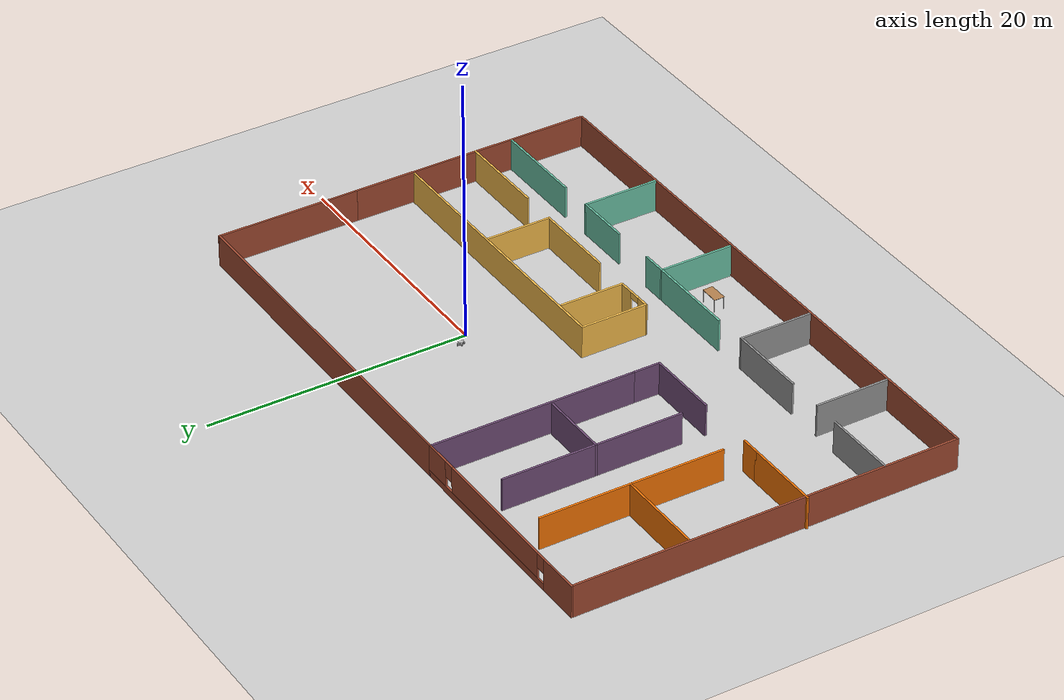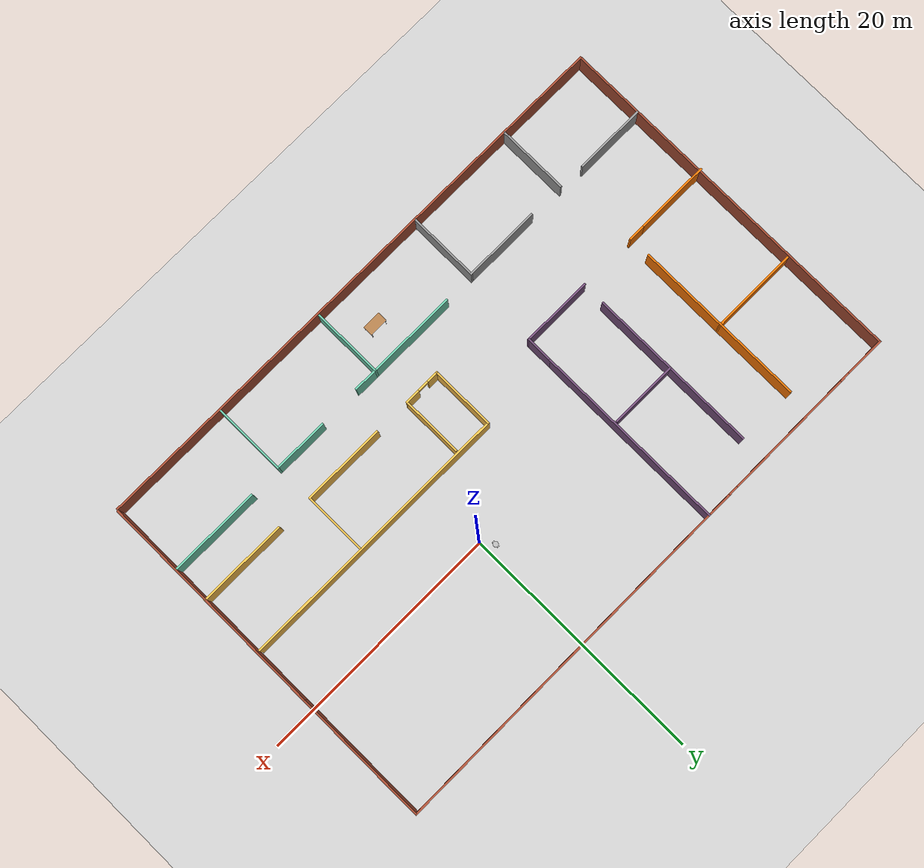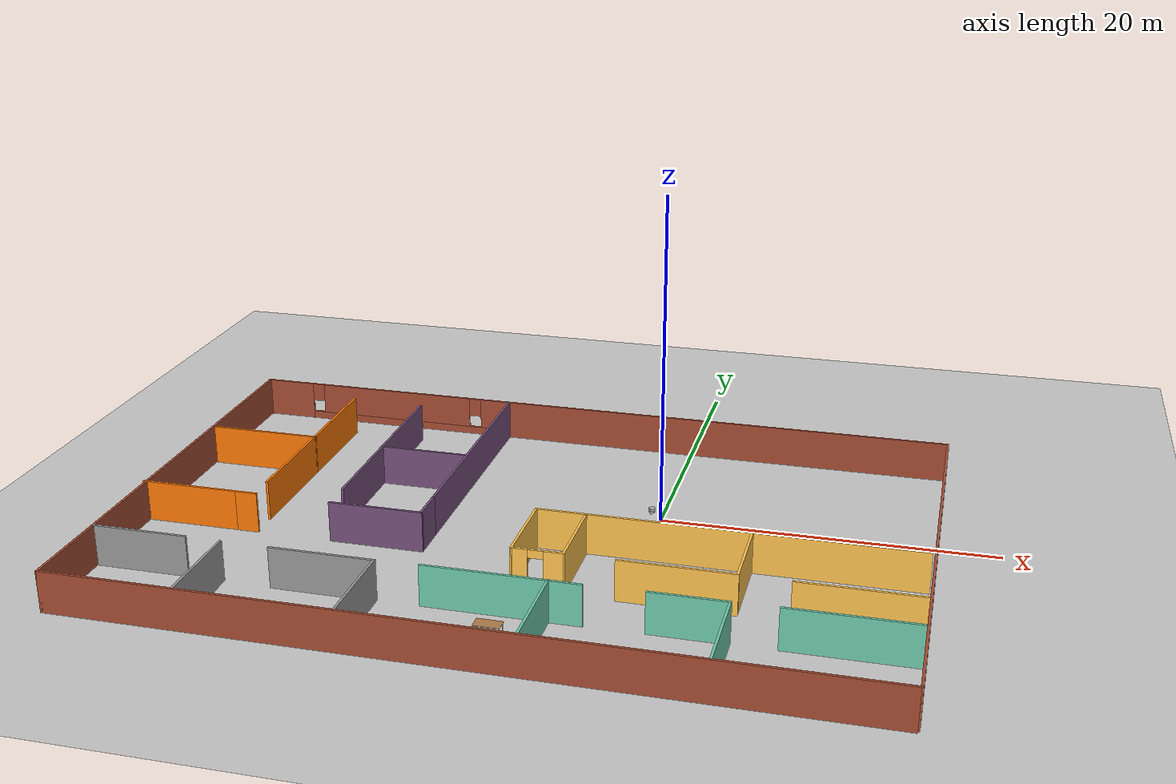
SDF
<sdf version="1.6">
 <world name="default">
  <model name="ground_plane">
   <static>1</static>
   <link name="link">
    <collision name="collision">
     <geometry><plane><normal>0 0 1</normal><size>100 100</size></plane></geometry>
     <surface><friction><ode><mu>100</mu><mu2>50</mu2></ode></friction></surface>
    </collision>
    <visual name="visual">
     <cast_shadows>0</cast_shadows>
     <geometry><plane><normal>0 0 1</normal><size>100 100</size></plane></geometry>
     <material>
      <script><uri>file://media/materials/scripts/gazebo.material</uri><name>Gazebo/Grey</name></script>
     </material>
    </visual>
   </link>
  </model>
  <model name="sinap_office">
   <pose>-6.8627 -4.6506 0 0 -0 0</pose>
   <link name="Wall_11">
    <pose>-14.3528 14.8 0 0 -0 0</pose>
    <visual name="Wall_11_Visual_0">
     <pose>-7.1066 0 1.25 0 -0 0</pose>
     <geometry><box><size>3.2868 0.15 2.5</size></box></geometry>
     <material>
      <script><uri>file://media/materials/scripts/gazebo.material</uri><name>Gazebo/Bricks</name></script>
      <ambient>1 1 1 1</ambient>
     </material>
     <meta><layer>0</layer></meta>
    </visual>
    <collision name="Wall_11_Collision_0">
     <geometry><box><size>3.2868 0.15 2.5</size></box></geometry>
     <pose>-7.1066 0 1.25 0 -0 0</pose>
    </collision>
    <visual name="Wall_11_Visual_1">
     <pose>1.6434 0 0.25 0 -0 0</pose>
     <geometry><box><size>14.2132 0.15 0.5</size></box></geometry>
     <material>
      <script><uri>file://media/materials/scripts/gazebo.material</uri><name>Gazebo/Bricks</name></script>
      <ambient>1 1 1 1</ambient>
     </material>
     <meta><layer>0</layer></meta>
    </visual>
    <collision name="Wall_11_Collision_1">
     <geometry><box><size>14.2132 0.15 0.5</size></box></geometry>
     <pose>1.6434 0 0.25 0 -0 0</pose>
    </collision>
    <visual name="Wall_11_Visual_2">
     <pose>0.608596 0 1.5 0 -0 0</pose>
     <geometry><box><size>10.5436 0.15 2</size></box></geometry>
     <material>
      <script><uri>file://media/materials/scripts/gazebo.material</uri><name>Gazebo/Bricks</name></script>
      <ambient>1 1 1 1</ambient>
     </material>
     <meta><layer>0</layer></meta>
    </visual>
    <collision name="Wall_11_Collision_2">
     <geometry><box><size>10.5436 0.15 2</size></box></geometry>
     <pose>0.608596 0 1.5 0 -0 0</pose>
    </collision>
    <visual name="Wall_11_Visual_3">
     <pose>7.71519 0 1.5 0 -0 0</pose>
     <geometry><box><size>2.06961 0.15 2</size></box></geometry>
     <material>
      <script><uri>file://media/materials/scripts/gazebo.material</uri><name>Gazebo/Bricks</name></script>
      <ambient>1 1 1 1</ambient>
     </material>
     <meta><layer>0</layer></meta>
    </visual>
    <collision name="Wall_11_Collision_3">
     <geometry><box><size>2.06961 0.15 2</size></box></geometry>
     <pose>7.71519 0 1.5 0 -0 0</pose>
    </collision>
    <visual name="Wall_11_Visual_4">
     <pose>-5.0632 0 1.9 0 -0 0</pose>
     <geometry><box><size>0.8 0.15 1.2</size></box></geometry>
     <material>
      <script><uri>file://media/materials/scripts/gazebo.material</uri><name>Gazebo/Bricks</name></script>
      <ambient>1 1 1 1</ambient>
     </material>
     <meta><layer>0</layer></meta>
    </visual>
    <collision name="Wall_11_Collision_4">
     <geometry><box><size>0.8 0.15 1.2</size></box></geometry>
     <pose>-5.0632 0 1.9 0 -0 0</pose>
    </collision>
    <visual name="Wall_11_Visual_5">
     <pose>6.28039 0 1.9 0 -0 0</pose>
     <geometry><box><size>0.8 0.15 1.2</size></box></geometry>
     <material>
      <script><uri>file://media/materials/scripts/gazebo.material</uri><name>Gazebo/Bricks</name></script>
      <ambient>1 1 1 1</ambient>
     </material>
     <meta><layer>0</layer></meta>
    </visual>
    <collision name="Wall_11_Collision_5">
     <geometry><box><size>0.8 0.15 1.2</size></box></geometry>
     <pose>6.28039 0 1.9 0 -0 0</pose>
    </collision>
   </link>
   <link name="Wall_12">
    <collision name="Wall_12_Collision">
     <geometry><box><size>15.75 0.15 2.5</size></box></geometry>
     <pose>0 0 1.25 0 -0 0</pose>
    </collision>
    <visual name="Wall_12_Visual">
     <pose>0 0 1.25 0 -0 0</pose>
     <geometry><box><size>15.75 0.15 2.5</size></box></geometry>
     <material>
      <script><uri>file://media/materials/scripts/gazebo.material</uri><name>Gazebo/Grey</name></script>
      <ambient>0.458824 0.313726 0.482353 1</ambient>
     </material>
     <meta><layer>0</layer></meta>
    </visual>
    <pose>-5.67784 7 0 0 -0 -1.5708</pose>
   </link>
   <link name="Wall_14">
    <collision name="Wall_14_Collision">
     <geometry><box><size>29 0.15 2.5</size></box></geometry>
     <pose>0 0 1.25 0 -0 0</pose>
    </collision>
    <visual name="Wall_14_Visual">
     <pose>0 0 1.25 0 -0 0</pose>
     <geometry><box><size>29 0.15 2.5</size></box></geometry>
     <material>
      <script><uri>file://media/materials/scripts/gazebo.material</uri><name>Gazebo/Bricks</name></script>
      <ambient>1 1 1 1</ambient>
     </material>
     <meta><layer>0</layer></meta>
    </visual>
    <pose>8.74716 14.8 0 0 -0 0</pose>
   </link>
   <link name="Wall_15">
    <collision name="Wall_15_Collision">
     <geometry><box><size>11 0.15 2.5</size></box></geometry>
     <pose>0 0 1.25 0 -0 0</pose>
    </collision>
    <visual name="Wall_15_Visual">
     <pose>0 0 1.25 0 -0 0</pose>
     <geometry><box><size>11 0.15 2.5</size></box></geometry>
     <material>
      <script><uri>file://media/materials/scripts/gazebo.material</uri><name>Gazebo/Bricks</name></script>
      <ambient>1 1 1 1</ambient>
     </material>
     <meta><layer>0</layer></meta>
    </visual>
    <pose>23.1722 9.375 0 0 -0 -1.5708</pose>
   </link>
   <link name="Wall_16">
    <collision name="Wall_16_Collision">
     <geometry><box><size>18.75 0.15 2.5</size></box></geometry>
     <pose>0 0 1.25 0 -0 0</pose>
    </collision>
    <visual name="Wall_16_Visual">
     <pose>0 0 1.25 0 -0 0</pose>
     <geometry><box><size>18.75 0.15 2.5</size></box></geometry>
     <material>
      <script><uri>file://media/materials/scripts/gazebo.material</uri><name>Gazebo/Bricks</name></script>
      <ambient>1 1 1 1</ambient>
     </material>
     <meta><layer>0</layer></meta>
    </visual>
    <pose>23.1722 -5.35 0 0 -0 -1.5708</pose>
   </link>
   <link name="Wall_18">
    <collision name="Wall_18_Collision">
     <geometry><box><size>46.25 0.15 2.5</size></box></geometry>
     <pose>0 0 1.25 0 -0 0</pose>
    </collision>
    <visual name="Wall_18_Visual">
     <pose>0 0 1.25 0 -0 0</pose>
     <geometry><box><size>46.25 0.15 2.5</size></box></geometry>
     <material>
      <script><uri>file://media/materials/scripts/gazebo.material</uri><name>Gazebo/Bricks</name></script>
      <ambient>0.435294 0.796078 0.67451 1</ambient>
     </material>
     <meta><layer>0</layer></meta>
    </visual>
    <pose>0.022159 -14.8 0 0 -0 0</pose>
   </link>
   <link name="Wall_22">
    <collision name="Wall_22_Collision">
     <geometry><box><size>22.5 0.15 2.5</size></box></geometry>
     <pose>0 0 1.25 0 -0 0</pose>
    </collision>
    <visual name="Wall_22_Visual">
     <pose>0 0 1.25 0 -0 0</pose>
     <geometry><box><size>22.5 0.15 2.5</size></box></geometry>
     <material>
      <script><uri>file://media/materials/scripts/gazebo.material</uri><name>Gazebo/Grey</name></script>
      <ambient>1 0.764706 0.305882 1</ambient>
     </material>
     <meta><layer>0</layer></meta>
    </visual>
    <pose>11.7514 -0.741547 0 0 -0 0</pose>
   </link>
   <link name="Wall_24">
    <collision name="Wall_24_Collision">
     <geometry><box><size>5.25 0.15 2.5</size></box></geometry>
     <pose>0 0 1.25 0 -0 0</pose>
    </collision>
    <visual name="Wall_24_Visual">
     <pose>0 0 1.25 0 -0 0</pose>
     <geometry><box><size>5.25 0.15 2.5</size></box></geometry>
     <material>
      <script><uri>file://media/materials/scripts/gazebo.material</uri><name>Gazebo/Grey</name></script>
      <ambient>1 0.764706 0.305882 1</ambient>
     </material>
     <meta><layer>0</layer></meta>
    </visual>
    <pose>0.57639 -3.29155 0 0 -0 -1.5708</pose>
   </link>
   <link name="Wall_31">
    <collision name="Wall_31_Collision">
     <geometry><box><size>2.25 0.15 2.5</size></box></geometry>
     <pose>0 0 1.25 0 -0 0</pose>
    </collision>
    <visual name="Wall_31_Visual">
     <pose>0 0 1.25 0 -0 0</pose>
     <geometry><box><size>2.25 0.15 2.5</size></box></geometry>
     <material>
      <script><uri>file://media/materials/scripts/gazebo.material</uri><name>Gazebo/Grey</name></script>
      <ambient>0.458824 0.313726 0.482353 1</ambient>
     </material>
     <meta><layer>0</layer></meta>
    </visual>
    <pose>-5.67784 -1.85 0 0 -0 -1.5708</pose>
   </link>
   <link name="Wall_34">
    <collision name="Wall_34_Collision">
     <geometry><box><size>5.75 0.15 2.5</size></box></geometry>
     <pose>0 0 1.25 0 -0 0</pose>
    </collision>
    <visual name="Wall_34_Visual">
     <pose>0 0 1.25 0 -0 0</pose>
     <geometry><box><size>5.75 0.15 2.5</size></box></geometry>
     <material>
      <script><uri>file://media/materials/scripts/gazebo.material</uri><name>Gazebo/Grey</name></script>
      <ambient>0.458824 0.313726 0.482353 1</ambient>
     </material>
     <meta><layer>0</layer></meta>
    </visual>
    <pose>-8.47784 -2.9 0 0 -0 3.14159</pose>
   </link>
   <link name="Wall_40">
    <collision name="Wall_40_Collision">
     <geometry><box><size>6 0.15 2.5</size></box></geometry>
     <pose>0 0 1.25 0 -0 0</pose>
    </collision>
    <visual name="Wall_40_Visual">
     <pose>0 0 1.25 0 -0 0</pose>
     <geometry><box><size>6 0.15 2.5</size></box></geometry>
     <material>
      <script><uri>file://media/materials/scripts/gazebo.material</uri><name>Gazebo/Grey</name></script>
      <ambient>0.996078 0.47451 0.0196078 1</ambient>
     </material>
     <meta><layer>0</layer></meta>
    </visual>
    <pose>-20.2478 -2.88015 0 0 -0 0</pose>
   </link>
   <link name="Wall_42">
    <collision name="Wall_42_Collision">
     <geometry><box><size>1.5 0.15 2.5</size></box></geometry>
     <pose>0 0 1.25 0 -0 0</pose>
    </collision>
    <visual name="Wall_42_Visual">
     <pose>0 0 1.25 0 -0 0</pose>
     <geometry><box><size>1.5 0.15 2.5</size></box></geometry>
     <material>
      <script><uri>file://media/materials/scripts/gazebo.material</uri><name>Gazebo/Grey</name></script>
      <ambient>0.996078 0.47451 0.0196078 1</ambient>
     </material>
     <meta><layer>0</layer></meta>
    </visual>
    <pose>-16.6478 -2.88015 0 0 -0 0</pose>
   </link>
   <link name="Wall_45">
    <collision name="Wall_45_Collision">
     <geometry><box><size>7 0.15 2.5</size></box></geometry>
     <pose>0 0 1.25 0 -0 0</pose>
    </collision>
    <visual name="Wall_45_Visual">
     <pose>0 0 1.25 0 -0 0</pose>
     <geometry><box><size>7 0.15 2.5</size></box></geometry>
     <material>
      <script><uri>file://media/materials/scripts/gazebo.material</uri><name>Gazebo/Grey</name></script>
      <ambient>0.996078 0.47451 0.0196078 1</ambient>
     </material>
     <meta><layer>0</layer></meta>
    </visual>
    <pose>-19.4223 5.97736 0 0 -0 3.14159</pose>
   </link>
   <link name="Wall_47">
    <collision name="Wall_47_Collision">
     <geometry><box><size>5.5 0.15 2.5</size></box></geometry>
     <pose>0 0 1.25 0 -0 0</pose>
    </collision>
    <visual name="Wall_47_Visual">
     <pose>0 0 1.25 0 -0 0</pose>
     <geometry><box><size>5.5 0.15 2.5</size></box></geometry>
     <material>
      <script><uri>file://media/materials/scripts/gazebo.material</uri><name>Gazebo/Grey</name></script>
      <ambient>0.458824 0.313726 0.482353 1</ambient>
     </material>
     <meta><layer>0</layer></meta>
    </visual>
    <pose>-8.56965 5.60305 0 0 -0 0</pose>
   </link>
   <link name="Wall_49">
    <collision name="Wall_49_Collision">
     <geometry><box><size>5 0.15 2.5</size></box></geometry>
     <pose>0 0 1.25 0 -0 0</pose>
    </collision>
    <visual name="Wall_49_Visual">
     <pose>0 0 1.25 0 -0 0</pose>
     <geometry><box><size>5 0.15 2.5</size></box></geometry>
     <material>
      <script><uri>file://media/materials/scripts/gazebo.material</uri><name>Gazebo/Grey</name></script>
      <ambient>1 0.764706 0.305882 1</ambient>
     </material>
     <meta><layer>0</layer></meta>
    </visual>
    <pose>3.54039 -3.38824 0 0 -0 1.5708</pose>
   </link>
   <link name="Wall_56">
    <collision name="Wall_56_Collision">
     <geometry><box><size>5.25 0.15 2.5</size></box></geometry>
     <pose>0 0 1.25 0 -0 0</pose>
    </collision>
    <visual name="Wall_56_Visual">
     <pose>0 0 1.25 0 -0 0</pose>
     <geometry><box><size>5.25 0.15 2.5</size></box></geometry>
     <material>
      <script><uri>file://media/materials/scripts/gazebo.material</uri><name>Gazebo/Grey</name></script>
      <ambient>1 0.764706 0.305882 1</ambient>
     </material>
     <meta><layer>0</layer></meta>
    </visual>
    <pose>13.1047 -3.29435 0 0 -0 -1.5708</pose>
   </link>
   <link name="Wall_60">
    <collision name="Wall_60_Collision">
     <geometry><box><size>5.75 0.15 2.5</size></box></geometry>
     <pose>0 0 1.25 0 -0 0</pose>
    </collision>
    <visual name="Wall_60_Visual">
     <pose>0 0 1.25 0 -0 0</pose>
     <geometry><box><size>5.75 0.15 2.5</size></box></geometry>
     <material>
      <script><uri>file://media/materials/scripts/gazebo.material</uri><name>Gazebo/Grey</name></script>
      <ambient>0.435294 0.796078 0.67451 1</ambient>
     </material>
     <meta><layer>0</layer></meta>
    </visual>
    <pose>3.52722 -11.8305 0 0 -0 -1.5708</pose>
   </link>
   <link name="Wall_62">
    <collision name="Wall_62_Collision">
     <geometry><box><size>5.75 0.15 2.5</size></box></geometry>
     <pose>0 0 1.25 0 -0 0</pose>
    </collision>
    <visual name="Wall_62_Visual">
     <pose>0 0 1.25 0 -0 0</pose>
     <geometry><box><size>5.75 0.15 2.5</size></box></geometry>
     <material>
      <script><uri>file://media/materials/scripts/gazebo.material</uri><name>Gazebo/Grey</name></script>
      <ambient>1 1 1 1</ambient>
     </material>
     <meta><layer>0</layer></meta>
    </visual>
    <pose>-6.15792 -11.9381 0 0 -0 -1.5708</pose>
   </link>
   <link name="Wall_64">
    <collision name="Wall_64_Collision">
     <geometry><box><size>5.75 0.15 2.5</size></box></geometry>
     <pose>0 0 1.25 0 -0 0</pose>
    </collision>
    <visual name="Wall_64_Visual">
     <pose>0 0 1.25 0 -0 0</pose>
     <geometry><box><size>5.75 0.15 2.5</size></box></geometry>
     <material>
      <script><uri>file://media/materials/scripts/gazebo.material</uri><name>Gazebo/Grey</name></script>
      <ambient>1 1 1 1</ambient>
     </material>
     <meta><layer>0</layer></meta>
    </visual>
    <pose>-15.1974 -11.9381 0 0 -0 -1.5708</pose>
   </link>
   <link name="Wall_66">
    <collision name="Wall_66_Collision">
     <geometry><box><size>7.25 0.15 2.5</size></box></geometry>
     <pose>0 0 1.25 0 -0 0</pose>
    </collision>
    <visual name="Wall_66_Visual">
     <pose>0 0 1.25 0 -0 0</pose>
     <geometry><box><size>7.25 0.15 2.5</size></box></geometry>
     <material>
      <script><uri>file://media/materials/scripts/gazebo.material</uri><name>Gazebo/Grey</name></script>
      <ambient>0.458824 0.313726 0.482353 1</ambient>
     </material>
     <meta><layer>0</layer></meta>
    </visual>
    <pose>-11.2446 9.15305 0 0 -0 1.5708</pose>
   </link>
   <link name="Wall_68">
    <collision name="Wall_68_Collision">
     <geometry><box><size>6.75 0.15 2.5</size></box></geometry>
     <pose>0 0 1.25 0 -0 0</pose>
    </collision>
    <visual name="Wall_68_Visual">
     <pose>0 0 1.25 0 -0 0</pose>
     <geometry><box><size>6.75 0.15 2.5</size></box></geometry>
     <material>
      <script><uri>file://media/materials/scripts/gazebo.material</uri><name>Gazebo/Grey</name></script>
      <ambient>0.458824 0.313726 0.482353 1</ambient>
     </material>
     <meta><layer>0</layer></meta>
    </visual>
    <pose>-11.2446 2.30305 0 0 -0 -1.5708</pose>
   </link>
   <link name="Wall_70">
    <collision name="Wall_70_Collision">
     <geometry><box><size>7.25003 0.15 2.5</size></box></geometry>
     <pose>0 0 1.25 0 -0 0</pose>
    </collision>
    <visual name="Wall_70_Visual">
     <pose>0 0 1.25 0 -0 0</pose>
     <geometry><box><size>7.25003 0.15 2.5</size></box></geometry>
     <material>
      <script><uri>file://media/materials/scripts/gazebo.material</uri><name>Gazebo/Grey</name></script>
      <ambient>0.996078 0.47451 0.0196078 1</ambient>
     </material>
     <meta><layer>0</layer></meta>
    </visual>
    <pose>-16.0071 2.42736 0 0 -0 -1.57358</pose>
   </link>
   <link name="Wall_72">
    <collision name="Wall_72_Collision">
     <geometry><box><size>7 0.15 2.5</size></box></geometry>
     <pose>0 0 1.25 0 -0 0</pose>
    </collision>
    <visual name="Wall_72_Visual">
     <pose>0 0 1.25 0 -0 0</pose>
     <geometry><box><size>7 0.15 2.5</size></box></geometry>
     <material>
      <script><uri>file://media/materials/scripts/gazebo.material</uri><name>Gazebo/Grey</name></script>
      <ambient>0.996078 0.47451 0.0196078 1</ambient>
     </material>
     <meta><layer>0</layer></meta>
    </visual>
    <pose>-15.9973 9.38258 0 0 -0 1.5708</pose>
   </link>
   <link name="Wall_74">
    <collision name="Wall_74_Collision">
     <geometry><box><size>5.75 0.15 2.5</size></box></geometry>
     <pose>0 0 1.25 0 -0 0</pose>
    </collision>
    <visual name="Wall_74_Visual">
     <pose>0 0 1.25 0 -0 0</pose>
     <geometry><box><size>5.75 0.15 2.5</size></box></geometry>
     <material>
      <script><uri>file://media/materials/scripts/gazebo.material</uri><name>Gazebo/Grey</name></script>
      <ambient>1 1 1 1</ambient>
     </material>
     <meta><layer>0</layer></meta>
    </visual>
    <pose>-20.1768 -9.05523 0 0 -0 0</pose>
   </link>
   <link name="Wall_76">
    <collision name="Wall_76_Collision">
     <geometry><box><size>6.25 0.15 2.5</size></box></geometry>
     <pose>0 0 1.25 0 -0 0</pose>
    </collision>
    <visual name="Wall_76_Visual">
     <pose>0 0 1.25 0 -0 0</pose>
     <geometry><box><size>6.25 0.15 2.5</size></box></geometry>
     <material>
      <script><uri>file://media/materials/scripts/gazebo.material</uri><name>Gazebo/Grey</name></script>
      <ambient>1 1 1 1</ambient>
     </material>
     <meta><layer>0</layer></meta>
    </visual>
    <pose>-9.20792 -9.13814 0 0 -0 3.14159</pose>
   </link>
   <link name="Wall_78">
    <collision name="Wall_78_Collision">
     <geometry><box><size>7.25 0.15 2.5</size></box></geometry>
     <pose>0 0 1.25 0 -0 0</pose>
    </collision>
    <visual name="Wall_78_Visual">
     <pose>0 0 1.25 0 -0 0</pose>
     <geometry><box><size>7.25 0.15 2.5</size></box></geometry>
     <material>
      <script><uri>file://media/materials/scripts/gazebo.material</uri><name>Gazebo/Grey</name></script>
      <ambient>0.435294 0.796078 0.67451 1</ambient>
     </material>
     <meta><layer>0</layer></meta>
    </visual>
    <pose>-0.022782 -9.03053 0 0 -0 3.14159</pose>
   </link>
   <link name="Wall_80">
    <collision name="Wall_80_Collision">
     <geometry><box><size>2 0.15 2.5</size></box></geometry>
     <pose>0 0 1.25 0 -0 0</pose>
    </collision>
    <visual name="Wall_80_Visual">
     <pose>0 0 1.25 0 -0 0</pose>
     <geometry><box><size>2 0.15 2.5</size></box></geometry>
     <material>
      <script><uri>file://media/materials/scripts/gazebo.material</uri><name>Gazebo/Grey</name></script>
      <ambient>0.435294 0.796078 0.67451 1</ambient>
     </material>
     <meta><layer>0</layer></meta>
    </visual>
    <pose>4.45222 -9.03053 0 0 -0 0</pose>
   </link>
   <link name="Wall_83">
    <collision name="Wall_83_Collision">
     <geometry><box><size>4.5 0.15 2.5</size></box></geometry>
     <pose>0 0 1.25 0 -0 0</pose>
    </collision>
    <visual name="Wall_83_Visual">
     <pose>0 0 1.25 0 -0 0</pose>
     <geometry><box><size>4.5 0.15 2.5</size></box></geometry>
     <material>
      <script><uri>file://media/materials/scripts/gazebo.material</uri><name>Gazebo/Grey</name></script>
      <ambient>0.435294 0.796078 0.67451 1</ambient>
     </material>
     <meta><layer>0</layer></meta>
    </visual>
    <pose>11.0308 -8.93741 0 0 -0 0</pose>
   </link>
   <link name="Wall_84">
    <collision name="Wall_84_Collision">
     <geometry><box><size>6 0.15 2.5</size></box></geometry>
     <pose>0 0 1.25 0 -0 0</pose>
    </collision>
    <visual name="Wall_84_Visual">
     <pose>0 0 1.25 0 -0 0</pose>
     <geometry><box><size>6 0.15 2.5</size></box></geometry>
     <material>
      <script><uri>file://media/materials/scripts/gazebo.material</uri><name>Gazebo/Grey</name></script>
      <ambient>0.435294 0.796078 0.67451 1</ambient>
     </material>
     <meta><layer>0</layer></meta>
    </visual>
    <pose>13.2058 -11.8624 0 0 -0 -1.5708</pose>
   </link>
   <link name="Wall_86">
    <collision name="Wall_86_Collision">
     <geometry><box><size>7.25 0.15 2.5</size></box></geometry>
     <pose>0 0 1.25 0 -0 0</pose>
    </collision>
    <visual name="Wall_86_Visual">
     <pose>0 0 1.25 0 -0 0</pose>
     <geometry><box><size>7.25 0.15 2.5</size></box></geometry>
     <material>
      <script><uri>file://media/materials/scripts/gazebo.material</uri><name>Gazebo/Grey</name></script>
      <ambient>1 0.764706 0.305882 1</ambient>
     </material>
     <meta><layer>0</layer></meta>
    </visual>
    <pose>19.6228 -5.9023 0 0 -0 3.14159</pose>
   </link>
   <link name="Wall_88">
    <collision name="Wall_88_Collision">
     <geometry><box><size>7.5 0.15 2.5</size></box></geometry>
     <pose>0 0 1.25 0 -0 0</pose>
    </collision>
    <visual name="Wall_88_Visual">
     <pose>0 0 1.25 0 -0 0</pose>
     <geometry><box><size>7.5 0.15 2.5</size></box></geometry>
     <material>
      <script><uri>file://media/materials/scripts/gazebo.material</uri><name>Gazebo/Grey</name></script>
      <ambient>0.435294 0.796078 0.67451 1</ambient>
     </material>
     <meta><layer>0</layer></meta>
    </visual>
    <pose>19.4978 -8.8647 0 0 -0 3.14159</pose>
   </link>
   <link name="Wall_9">
    <collision name="Wall_9_Collision">
     <geometry><box><size>29.75 0.15 2.5</size></box></geometry>
     <pose>0 0 1.25 0 -0 0</pose>
    </collision>
    <visual name="Wall_9_Visual">
     <pose>0 0 1.25 0 -0 0</pose>
     <geometry><box><size>29.75 0.15 2.5</size></box></geometry>
     <material>
      <script><uri>file://media/materials/scripts/gazebo.material</uri><name>Gazebo/Bricks</name></script>
      <ambient>1 1 1 1</ambient>
     </material>
     <meta><layer>0</layer></meta>
    </visual>
    <pose>-23.0278 0 0 0 -0 -1.5708</pose>
   </link>
   <link name="Wall_91">
    <collision name="Wall_91_Collision">
     <geometry><box><size>6.75 0.15 2.5</size></box></geometry>
     <pose>0 0 1.25 0 -0 0</pose>
    </collision>
    <visual name="Wall_91_Visual">
     <pose>0 0 1.25 0 -0 0</pose>
     <geometry><box><size>6.75 0.15 2.5</size></box></geometry>
     <material>
      <script><uri>file://media/materials/scripts/gazebo.material</uri><name>Gazebo/Grey</name></script>
      <ambient>1 0.764706 0.305882 1</ambient>
     </material>
     <meta><layer>0</layer></meta>
    </visual>
    <pose>9.80474 -5.84436 0 0 -0 3.14159</pose>
   </link>
   <link name="Wall_93">
    <pose>2.05839 -5.8274 0 0 -0 0.009549</pose>
    <visual name="Wall_93_Visual_0">
     <pose>-1.05491 0 1.25 0 -0 0</pose>
     <geometry><box><size>1.00432 0.15 2.5</size></box></geometry>
     <material>
      <script><uri>file://media/materials/scripts/gazebo.material</uri><name>Gazebo/Grey</name></script>
      <ambient>1 0.764706 0.305882 1</ambient>
     </material>
     <meta><layer>0</layer></meta>
    </visual>
    <collision name="Wall_93_Collision_0">
     <geometry><box><size>1.00432 0.15 2.5</size></box></geometry>
     <pose>-1.05491 0 1.25 0 -0 0</pose>
    </collision>
    <visual name="Wall_93_Visual_1">
     <pose>0.95216 0 1.25 0 -0 0</pose>
     <geometry><box><size>1.20982 0.15 2.5</size></box></geometry>
     <material>
      <script><uri>file://media/materials/scripts/gazebo.material</uri><name>Gazebo/Grey</name></script>
      <ambient>1 0.764706 0.305882 1</ambient>
     </material>
     <meta><layer>0</layer></meta>
    </visual>
    <collision name="Wall_93_Collision_1">
     <geometry><box><size>1.20982 0.15 2.5</size></box></geometry>
     <pose>0.95216 0 1.25 0 -0 0</pose>
    </collision>
    <visual name="Wall_93_Visual_2">
     <pose>-0.102748 0 2.25 0 -0 0</pose>
     <geometry><box><size>0.9 0.15 0.5</size></box></geometry>
     <material>
      <script><uri>file://media/materials/scripts/gazebo.material</uri><name>Gazebo/Grey</name></script>
      <ambient>1 0.764706 0.305882 1</ambient>
     </material>
     <meta><layer>0</layer></meta>
    </visual>
    <collision name="Wall_93_Collision_2">
     <geometry><box><size>0.9 0.15 0.5</size></box></geometry>
     <pose>-0.102748 0 2.25 0 -0 0</pose>
    </collision>
   </link>
   <static>1</static>
  </model>
  <model name="table_clone_10">
   <static>1</static>
   <link name="link">
    <collision name="surface">
     <pose>0 0 1 0 -0 0</pose>
     <geometry><box><size>1.5 0.8 0.03</size></box></geometry>
     <surface><friction><ode><mu>0.6</mu><mu2>0.6</mu2></ode></friction></surface>
    </collision>
    <visual name="visual1">
     <pose>0 0 1 0 -0 0</pose>
     <geometry><box><size>1.5 0.8 0.03</size></box></geometry>
     <material>
      <script><uri>file://media/materials/scripts/gazebo.material</uri><name>Gazebo/Wood</name></script>
     </material>
    </visual>
    <collision name="front_left_leg">
     <pose>0.68 0.38 0.5 0 -0 0</pose>
     <geometry><cylinder><radius>0.02</radius><length>1</length></cylinder></geometry>
    </collision>
    <visual name="front_left_leg">
     <pose>0.68 0.38 0.5 0 -0 0</pose>
     <geometry><cylinder><radius>0.02</radius><length>1</length></cylinder></geometry>
     <material>
      <script><uri>file://media/materials/scripts/gazebo.material</uri><name>Gazebo/Grey</name></script>
     </material>
    </visual>
    <collision name="front_right_leg">
     <pose>0.68 -0.38 0.5 0 -0 0</pose>
     <geometry><cylinder><radius>0.02</radius><length>1</length></cylinder></geometry>
    </collision>
    <visual name="front_right_leg">
     <pose>0.68 -0.38 0.5 0 -0 0</pose>
     <geometry><cylinder><radius>0.02</radius><length>1</length></cylinder></geometry>
     <material>
      <script><uri>file://media/materials/scripts/gazebo.material</uri><name>Gazebo/Grey</name></script>
     </material>
    </visual>
    <collision name="back_right_leg">
     <pose>-0.68 -0.38 0.5 0 -0 0</pose>
     <geometry><cylinder><radius>0.02</radius><length>1</length></cylinder></geometry>
    </collision>
    <visual name="back_right_leg">
     <pose>-0.68 -0.38 0.5 0 -0 0</pose>
     <geometry><cylinder><radius>0.02</radius><length>1</length></cylinder></geometry>
     <material>
      <script><uri>file://media/materials/scripts/gazebo.material</uri><name>Gazebo/Grey</name></script>
     </material>
    </visual>
    <collision name="back_left_leg">
     <pose>-0.68 0.38 0.5 0 -0 0</pose>
     <geometry><cylinder><radius>0.02</radius><length>1</length></cylinder></geometry>
    </collision>
    <visual name="back_left_leg">
     <pose>-0.68 0.38 0.5 0 -0 0</pose>
     <geometry><cylinder><radius>0.02</radius><length>1</length></cylinder></geometry>
     <material>
      <script><uri>file://media/materials/scripts/gazebo.material</uri><name>Gazebo/Grey</name></script>
     </material>
    </visual>
   </link>
   <pose>-5.80864 -16.3358 0 0 -0 0</pose>
  </model>
  <model name="my_robot">
   <link name="robot_footprint">
    <inertial>
     <pose>0.002237 0 0.001316 0 -0 0</pose>
     <mass>15.2</mass>
     <inertia>
      <ixx>0.102476</ixx>
      <ixy>0</ixy>
      <ixz>-0.00335526</ixz>
      <iyy>0.10818</iyy>
      <iyz>0</iyz>
      <izz>0.105706</izz>
     </inertia>
    </inertial>
    <collision name="robot_footprint_fixed_joint_lump__collision_collision">
     <geometry><cylinder><length>0.05</length><radius>0.2</radius></cylinder></geometry>
    </collision>
    <collision name="robot_footprint_fixed_joint_lump__rod1_collision_1">
     <pose>0.12 0.12 0.125 0 -0 0</pose>
     <geometry><cylinder><length>0.2</length><radius>0.01</radius></cylinder></geometry>
    </collision>
    <collision name="robot_footprint_fixed_joint_lump__rod2_collision_2">
     <pose>-0.12 0.12 0.125 0 -0 0</pose>
     <geometry><cylinder><length>0.2</length><radius>0.01</radius></cylinder></geometry>
    </collision>
    <collision name="robot_footprint_fixed_joint_lump__rod3_collision_3">
     <pose>0.12 -0.12 0.125 0 -0 0</pose>
     <geometry><cylinder><length>0.2</length><radius>0.01</radius></cylinder></geometry>
    </collision>
    <collision name="robot_footprint_fixed_joint_lump__rod4_collision_4">
     <pose>-0.12 -0.12 0.125 0 -0 0</pose>
     <geometry><cylinder><length>0.2</length><radius>0.01</radius></cylinder></geometry>
    </collision>
    <collision name="robot_footprint_fixed_joint_lump__second_layer_collision_collision_5">
     <pose>0 0 0.11 0 -0 0</pose>
     <geometry><cylinder><length>0.01</length><radius>0.2</radius></cylinder></geometry>
    </collision>
    <collision name="robot_footprint_fixed_joint_lump__top_layer_collision_collision_6">
     <pose>0 0 0.21 0 -0 0</pose>
     <geometry><cylinder><length>0.01</length><radius>0.2</radius></cylinder></geometry>
    </collision>
    <collision name="robot_footprint_fixed_joint_lump__back_caster_collision_collision_7">
     <pose>-0.15 0 -0.05 0 -0 0</pose>
     <geometry><sphere><radius>0.0499</radius></sphere></geometry>
    </collision>
    <collision name="robot_footprint_fixed_joint_lump__rod1_collision_8">
     <pose>0.12 0.12 0.07 0 -0 0</pose>
     <geometry><cylinder><length>0.1</length><radius>0.01</radius></cylinder></geometry>
    </collision>
    <collision name="robot_footprint_fixed_joint_lump__front_caster_collision_collision_9">
     <pose>0.15 0 -0.05 0 -0 0</pose>
     <geometry><sphere><radius>0.0499</radius></sphere></geometry>
    </collision>
    <collision name="robot_footprint_fixed_joint_lump__camara_collisoin_collision_10">
     <pose>0.17 0 0.05 0 -0 0</pose>
     <geometry><box><size>0.05 0.05 0.05</size></box></geometry>
    </collision>
    <collision name="robot_footprint_fixed_joint_lump__hokuyo_collisoin_collision_11">
     <pose>0.17 0 0.15 0 -0 0</pose>
     <geometry><box><size>0.1 0.1 0.1</size></box></geometry>
    </collision>
    <visual name="robot_footprint_fixed_joint_lump__chassis_visual_visual">
     <geometry><cylinder><length>0.05</length><radius>0.2</radius></cylinder></geometry>
    </visual>
    <visual name="robot_footprint_fixed_joint_lump__rod1_visual_1">
     <pose>0.12 0.12 0.125 0 -0 0</pose>
     <geometry><cylinder><length>0.2</length><radius>0.01</radius></cylinder></geometry>
    </visual>
    <visual name="robot_footprint_fixed_joint_lump__rod2_visual_2">
     <pose>-0.12 0.12 0.125 0 -0 0</pose>
     <geometry><cylinder><length>0.2</length><radius>0.01</radius></cylinder></geometry>
    </visual>
    <visual name="robot_footprint_fixed_joint_lump__rod3_visual_3">
     <pose>0.12 -0.12 0.125 0 -0 0</pose>
     <geometry><cylinder><length>0.2</length><radius>0.01</radius></cylinder></geometry>
    </visual>
    <visual name="robot_footprint_fixed_joint_lump__rod4_visual_4">
     <pose>-0.12 -0.12 0.125 0 -0 0</pose>
     <geometry><cylinder><length>0.2</length><radius>0.01</radius></cylinder></geometry>
    </visual>
    <visual name="robot_footprint_fixed_joint_lump__second_layer_visual_visual_5">
     <pose>0 0 0.11 0 -0 0</pose>
     <geometry><cylinder><length>0.01</length><radius>0.2</radius></cylinder></geometry>
    </visual>
    <visual name="robot_footprint_fixed_joint_lump__top_layer_visual_visual_6">
     <pose>0 0 0.22 0 -0 0</pose>
     <geometry><cylinder><length>0.01</length><radius>0.2</radius></cylinder></geometry>
    </visual>
    <visual name="robot_footprint_fixed_joint_lump__rod1_visual_7">
     <pose>0.12 0.12 0.07 0 -0 0</pose>
     <geometry><cylinder><length>0.1</length><radius>0.01</radius></cylinder></geometry>
    </visual>
    <visual name="robot_footprint_fixed_joint_lump__back_caster_visual_visual_8">
     <pose>-0.15 0 -0.05 0 -0 0</pose>
     <geometry><sphere><radius>0.05</radius></sphere></geometry>
    </visual>
    <visual name="robot_footprint_fixed_joint_lump__front_caster_visual_visual_9">
     <pose>0.15 0 -0.05 0 -0 0</pose>
     <geometry><sphere><radius>0.05</radius></sphere></geometry>
    </visual>
    <visual name="robot_footprint_fixed_joint_lump__camara_visual_visual_10">
     <pose>0.17 0 0.05 0 -0 0</pose>
     <geometry><box><size>0.05 0.05 0.05</size></box></geometry>
    </visual>
    <visual name="robot_footprint_fixed_joint_lump__hokuyo_visual_visual_11">
     <pose>0.17 0 0.15 0 -0 0</pose>
     <geometry><box><size>0.05 0.05 0.05</size></box></geometry>
     <material><script><uri>__default__</uri><name>__default__</name></script></material>
    </visual>
    <sensor name="camera1" type="camera">
     <update_rate>30</update_rate>
     <camera name="head">
      <horizontal_fov>1.39626</horizontal_fov>
      <image><width>800</width><height>800</height><format>R8G8B8</format></image>
      <clip><near>0.02</near><far>300</far></clip>
     </camera>
     <plugin name="camera_controller" filename="libgazebo_ros_camera.so">
      <alwaysOn>1</alwaysOn>
      <updateRate>0.0</updateRate>
      <cameraName>camera</cameraName>
      <imageTopicName>rgb/image_raw</imageTopicName>
      <cameraInfoTopicName>rgb/camera_info</cameraInfoTopicName>
      <frameName>camera</frameName>
      <hackBaseline>0.07</hackBaseline>
      <distortionK1>0.0</distortionK1>
      <distortionK2>0.0</distortionK2>
      <distortionK3>0.0</distortionK3>
      <distortionT1>0.0</distortionT1>
      <distortionT2>0.0</distortionT2>
      <robotNamespace>/</robotNamespace>
     </plugin>
     <pose>0.17 0 0.05 0 -0 0</pose>
    </sensor>
    <sensor name="head_hokuyo_sensor" type="ray">
     <visualize>0</visualize>
     <update_rate>40</update_rate>
     <ray>
      <scan>
       <horizontal>
        <samples>720</samples>
        <resolution>1</resolution>
        <min_angle>-1.5708</min_angle>
        <max_angle>1.5708</max_angle>
       </horizontal>
       <vertical><samples>1</samples><min_angle>0</min_angle><max_angle>0</max_angle></vertical>
      </scan>
      <range><min>0.1</min><max>30</max><resolution>0.01</resolution></range>
      <noise><type>gaussian</type><mean>0</mean><stddev>0.01</stddev></noise>
     </ray>
     <plugin name="gazebo_ros_head_hokuyo_controller" filename="libgazebo_ros_laser.so">
      <topicName>/scan</topicName>
      <frameName>hokuyo</frameName>
      <robotNamespace>/</robotNamespace>
     </plugin>
     <pose>0.17 0 0.15 0 -0 0</pose>
    </sensor>
   </link>
   <link name="left_wheel">
    <pose>0 0.24 0 0 -0 0</pose>
    <inertial>
     <pose>0 0 0 -0 1.5707 1.5707</pose>
     <mass>5</mass>
     <inertia><ixx>0.1</ixx><ixy>0</ixy><ixz>0</ixz><iyy>0.1</iyy><iyz>0</iyz><izz>0.1</izz></inertia>
    </inertial>
    <collision name="left_wheel_collisoin_collision">
     <pose>0 0 0 3.14159 1.57079 -1.57089</pose>
     <geometry><cylinder><length>0.05</length><radius>0.1</radius></cylinder></geometry>
    </collision>
    <visual name="left_wheel_visual_visual">
     <pose>0 0 0 3.14159 1.57079 -1.57089</pose>
     <geometry><cylinder><length>0.05</length><radius>0.1</radius></cylinder></geometry>
    </visual>
   </link>
   <joint name="left_wheel_hinge" type="revolute">
    <child>left_wheel</child>
    <parent>robot_footprint</parent>
    <axis>
     <xyz>0 1 0</xyz>
     <limit><lower>-1e+16</lower><upper>1e+16</upper></limit>
     <dynamics>
      <damping>1</damping>
      <friction>1</friction>
      <spring_reference>0</spring_reference>
      <spring_stiffness>0</spring_stiffness>
     </dynamics>
     <use_parent_model_frame>1</use_parent_model_frame>
    </axis>
   </joint>
   <link name="right_wheel">
    <pose>0 -0.24 0 0 -0 0</pose>
    <inertial>
     <pose>0 0 0 -0 1.5707 1.5707</pose>
     <mass>5</mass>
     <inertia><ixx>0.1</ixx><ixy>0</ixy><ixz>0</ixz><iyy>0.1</iyy><iyz>0</iyz><izz>0.1</izz></inertia>
    </inertial>
    <collision name="right_wheel_collisoin_collision">
     <pose>0 0 0 3.14159 1.57079 -1.57089</pose>
     <geometry><cylinder><length>0.05</length><radius>0.1</radius></cylinder></geometry>
    </collision>
    <visual name="right_wheel_visual_visual">
     <pose>0 0 0 3.14159 1.57079 -1.57089</pose>
     <geometry><cylinder><length>0.05</length><radius>0.1</radius></cylinder></geometry>
    </visual>
   </link>
   <joint name="right_wheel_hinge" type="revolute">
    <child>right_wheel</child>
    <parent>robot_footprint</parent>
    <axis>
     <xyz>0 1 0</xyz>
     <limit><lower>-1e+16</lower><upper>1e+16</upper></limit>
     <dynamics>
      <damping>1</damping>
      <friction>1</friction>
      <spring_reference>0</spring_reference>
      <spring_stiffness>0</spring_stiffness>
     </dynamics>
     <use_parent_model_frame>1</use_parent_model_frame>
    </axis>
   </joint>
   <static>0</static>
   <plugin name="differential_drive_controller" filename="libgazebo_ros_diff_drive.so">
    <legacyMode>0</legacyMode>
    <alwaysOn>1</alwaysOn>
    <updateRate>10</updateRate>
    <leftJoint>left_wheel_hinge</leftJoint>
    <rightJoint>right_wheel_hinge</rightJoint>
    <wheelSeparation>0.58</wheelSeparation>
    <wheelDiameter>0.2</wheelDiameter>
    <torque>10</torque>
    <commandTopic>cmd_vel</commandTopic>
    <odometryTopic>odom</odometryTopic>
    <odometryFrame>odom</odometryFrame>
    <robotBaseFrame>robot_footprint</robotBaseFrame>
    <publishWheelTF>0</publishWheelTF>
    <publishWheelJointState>0</publishWheelJointState>
    <rosDebugLevel>na</rosDebugLevel>
    <wheelAcceleration>0</wheelAcceleration>
    <wheelTorque>5</wheelTorque>
    <odometrySource>world</odometrySource>
    <publishTf>1</publishTf>
    <publishOdomTF>1</publishOdomTF>
    <robotNamespace>/</robotNamespace>
   </plugin>
   <pose>-0.73182 0.859251 0.099994 -7e-06 0.000667 0.005818</pose>
  </model>
 </world>
</sdf>
